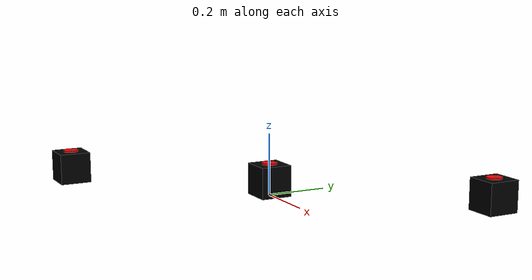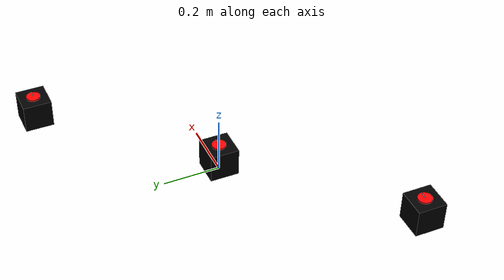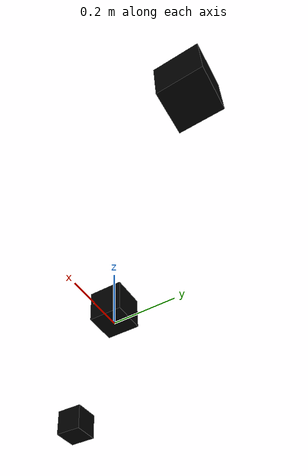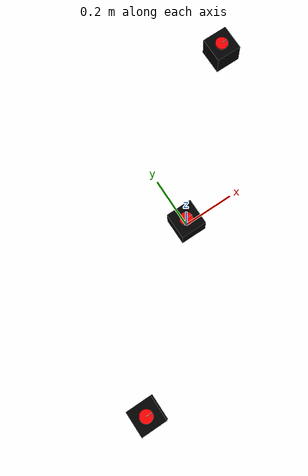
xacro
<?xml version="1.0"?>
<robot name="qube_model" xmlns:xacro="http://www.ros.org/wiki/xacro">

    <xacro:include filename="$(find qube_description)/urdf/qube.macro.xacro"/>

    <link name="world"/>
    <xacro:qube_model prefix="qube_1" base_x="0" base_y="0" base_z="0"/>
    <xacro:qube_model prefix="qube_2" base_x="0.5" base_y="0.5" base_z="0"/>
    <xacro:qube_model prefix="qube_3" base_x="-0.5" base_y="-0.5" base_z="0"/>

</robot>

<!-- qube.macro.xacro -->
<robot xmlns:xacro="http://www.ros.org/wiki/xacro">

  <material name = "black">
    <color rgba="0 0 0 1"/>
  </material>
  <material name = "red">
    <color rgba="1 0 0 1"/>
  </material>
  <material name = "white">
    <color rgba="1 1 1 1"/>
  </material>

	<xacro:macro name="qube_model" params="prefix base_x base_y base_z">
		<xacro:property name="box_width" value="0.102"/>
		<xacro:property name="angle_link_length" value="0.025"/>
		<xacro:property name="angle_link_width" value="0.002"/>
    <xacro:property name="angle_limit" value="3.14"/>
    <xacro:property name="rotor_radius" value="0.025"/>
    <xacro:property name="rotor_length" value="0.01"/>

    <link name="${prefix}base_link"/>

    <joint name="${prefix}base_joint" type="fixed">
        <parent link="world"/>
        <child link="${prefix}base_link"/>
        <origin xyz="${base_x} ${base_y} ${base_z}" rpy="0 0 0"/>
    </joint>

		<link name="${prefix}stator_link">
      <visual>
        <geometry>
          <box size="${box_width} ${box_width} ${box_width}"/>
        </geometry>
        <origin xyz="0 0 0" rpy="0 0 0"/>
        <material name="black"/>
      </visual>
    </link>

    <link name="${prefix}rotor_link">
      <visual>
        <geometry>
          <cylinder length="${rotor_length}" radius="${rotor_radius}"/>
        </geometry>
        <origin xyz="0 0 0" rpy="0 0 0"/>
        <material name="red"/>
      </visual>
    </link>

    <link name="${prefix}angle_link">
      <visual>
        <geometry>
          <box size="${angle_link_length} ${angle_link_width} ${angle_link_width}"/>
        </geometry>
        <origin xyz="0 0 0" rpy="0 0 0"/>
        <material name="white"/>
      </visual>
    </link>

    <joint name="${prefix}stator_joint" type="fixed">
      <parent link="${prefix}base_link"/>
      <child link="${prefix}stator_link"/>
      <origin xyz="0 0 ${box_width/2}" rpy="0 0 0"/>
    </joint>

    <joint name="${prefix}angle_joint" type="revolute">
      <parent link="${prefix}stator_link"/>
      <child link="${prefix}rotor_link"/>
      <origin xyz="0 0 ${box_width/2}" rpy="0 0 0"/>
      <axis xyz="0 0 1"/>
      <limit lower="-3.14" upper="3.14" effort="100.0" velocity="1.0"/>
    </joint>

    <joint name="${prefix}indicator_joint" type="fixed">
      <parent link="${prefix}rotor_link"/>
      <child link="${prefix}angle_link"/>
      <origin xyz="0.0125 0 0.005" rpy="0 0 0"/>
    </joint>

	</xacro:macro>
</robot>
